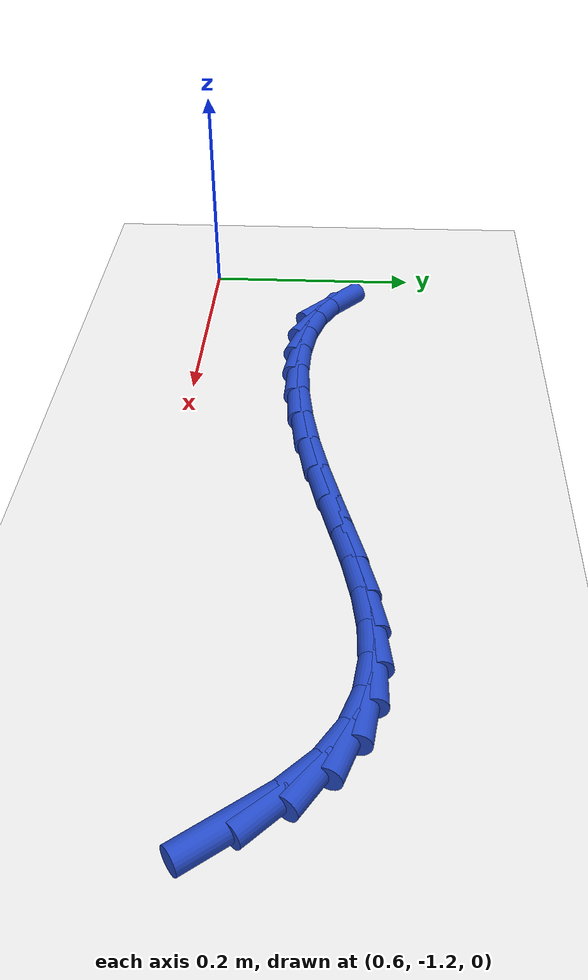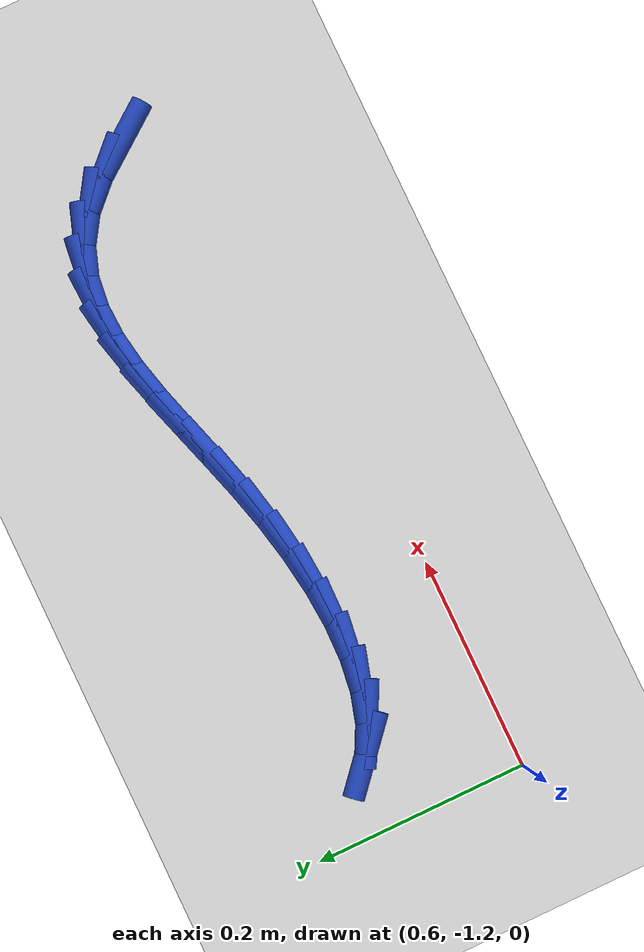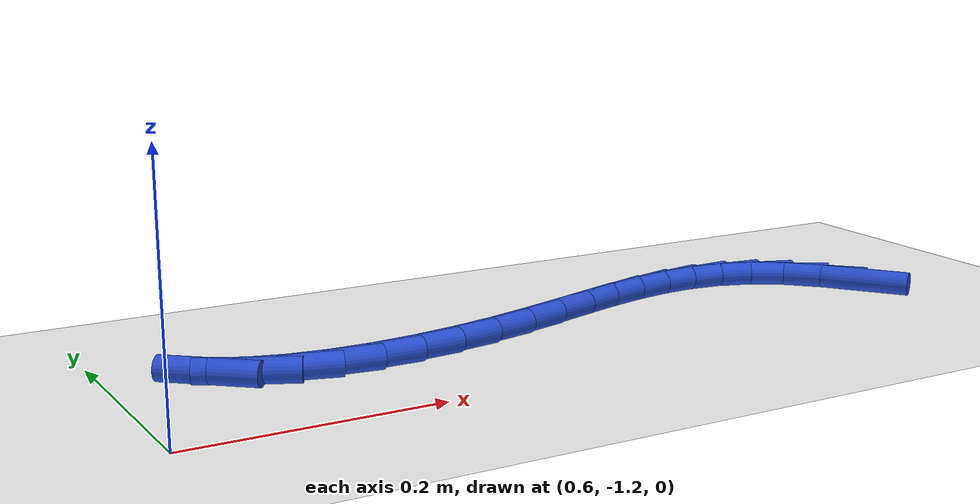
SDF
<sdf version="1.6">
 <world name="default">
  <model name="ground_plane">
   <static>1</static>
   <link name="link">
    <collision name="collision">
     <geometry><plane><normal>0 0 1</normal><size>100 100</size></plane></geometry>
     <surface><friction><ode><mu>100</mu><mu2>50</mu2></ode></friction></surface>
    </collision>
    <visual name="visual">
     <cast_shadows>0</cast_shadows>
     <geometry><plane><normal>0 0 1</normal><size>100 100</size></plane></geometry>
     <material>
      <script><uri>file://media/materials/scripts/gazebo.material</uri><name>Gazebo/WhiteGlow</name></script>
     </material>
    </visual>
   </link>
  </model>
  <model name="line">
   <link name="link_177">
    <pose>1.2574953740834272 -1.1154600243261439 0.01 0 1.57 -0.9251960070785696</pose>
    <collision name="collision">
     <geometry><cylinder><radius>0.01</radius><length>0.08</length></cylinder></geometry>
    </collision>
    <visual name="visual">
     <material>
      <script><name>Gazebo/Blue</name><uri>file://media/materials/scripts/gazebo.material</uri></script>
     </material>
     <geometry><cylinder><radius>0.01</radius><length>0.08</length></cylinder></geometry>
    </visual>
   </link>
   <link name="link_178">
    <pose>1.2353408535639914 -1.0860494893891866 0.01 0 1.57 -0.786071275579081</pose>
    <collision name="collision">
     <geometry><cylinder><radius>0.01</radius><length>0.08</length></cylinder></geometry>
    </collision>
    <visual name="visual">
     <material>
      <script><name>Gazebo/Blue</name><uri>file://media/materials/scripts/gazebo.material</uri></script>
     </material>
     <geometry><cylinder><radius>0.01</radius><length>0.08</length></cylinder></geometry>
    </visual>
   </link>
   <link name="link_179">
    <pose>1.2114227047401316 -1.0620991196775176 0.01 0 1.57 -0.5690718948985967</pose>
    <collision name="collision">
     <geometry><cylinder><radius>0.01</radius><length>0.08</length></cylinder></geometry>
    </collision>
    <visual name="visual">
     <material>
      <script><name>Gazebo/Blue</name><uri>file://media/materials/scripts/gazebo.material</uri></script>
     </material>
     <geometry><cylinder><radius>0.01</radius><length>0.08</length></cylinder></geometry>
    </visual>
   </link>
   <link name="link_180">
    <pose>1.1857620124269057 -1.0456850032497507 0.01 0 1.57 -0.3360389864501063</pose>
    <collision name="collision">
     <geometry><cylinder><radius>0.01</radius><length>0.08</length></cylinder></geometry>
    </collision>
    <visual name="visual">
     <material>
      <script><name>Gazebo/Blue</name><uri>file://media/materials/scripts/gazebo.material</uri></script>
     </material>
     <geometry><cylinder><radius>0.01</radius><length>0.08</length></cylinder></geometry>
    </visual>
   </link>
   <link name="link_181">
    <pose>1.1584656367248785 -1.036150749458793 0.01 0 1.57 -0.12601335157075816</pose>
    <collision name="collision">
     <geometry><cylinder><radius>0.01</radius><length>0.08</length></cylinder></geometry>
    </collision>
    <visual name="visual">
     <material>
      <script><name>Gazebo/Blue</name><uri>file://media/materials/scripts/gazebo.material</uri></script>
     </material>
     <geometry><cylinder><radius>0.01</radius><length>0.08</length></cylinder></geometry>
    </visual>
   </link>
   <link name="link_182">
    <pose>1.129651097406752 -1.0325003905060557 0.01 0 1.57 0.04093560277414147</pose>
    <collision name="collision">
     <geometry><cylinder><radius>0.01</radius><length>0.08</length></cylinder></geometry>
    </collision>
    <visual name="visual">
     <material>
      <script><name>Gazebo/Blue</name><uri>file://media/materials/scripts/gazebo.material</uri></script>
     </material>
     <geometry><cylinder><radius>0.01</radius><length>0.08</length></cylinder></geometry>
    </visual>
   </link>
   <link name="link_183">
    <pose>1.099435914245227 -1.0337379585929478 0.01 0 1.57 0.1614337470369636</pose>
    <collision name="collision">
     <geometry><cylinder><radius>0.01</radius><length>0.08</length></cylinder></geometry>
    </collision>
    <visual name="visual">
     <material>
      <script><name>Gazebo/Blue</name><uri>file://media/materials/scripts/gazebo.material</uri></script>
     </material>
     <geometry><cylinder><radius>0.01</radius><length>0.08</length></cylinder></geometry>
    </visual>
   </link>
   <link name="link_184">
    <pose>1.067937607013006 -1.0388674859208817 0.01 0 1.57 0.24092740371206198</pose>
    <collision name="collision">
     <geometry><cylinder><radius>0.01</radius><length>0.08</length></cylinder></geometry>
    </collision>
    <visual name="visual">
     <material>
      <script><name>Gazebo/Blue</name><uri>file://media/materials/scripts/gazebo.material</uri></script>
     </material>
     <geometry><cylinder><radius>0.01</radius><length>0.08</length></cylinder></geometry>
    </visual>
   </link>
   <link name="link_185">
    <pose>1.0352736954827886 -1.046893004691267 0.01 0 1.57 0.28633124243324376</pose>
    <collision name="collision">
     <geometry><cylinder><radius>0.01</radius><length>0.08</length></cylinder></geometry>
    </collision>
    <visual name="visual">
     <material>
      <script><name>Gazebo/Blue</name><uri>file://media/materials/scripts/gazebo.material</uri></script>
     </material>
     <geometry><cylinder><radius>0.01</radius><length>0.08</length></cylinder></geometry>
    </visual>
   </link>
   <link name="link_186">
    <pose>1.0015616994272782 -1.0568185471055143 0.01 0 1.57 0.30298474546033943</pose>
    <collision name="collision">
     <geometry><cylinder><radius>0.01</radius><length>0.08</length></cylinder></geometry>
    </collision>
    <visual name="visual">
     <material>
      <script><name>Gazebo/Blue</name><uri>file://media/materials/scripts/gazebo.material</uri></script>
     </material>
     <geometry><cylinder><radius>0.01</radius><length>0.08</length></cylinder></geometry>
    </visual>
   </link>
   <link name="link_187">
    <pose>0.9669191386191758 -1.067648145365034 0.01 0 1.57 0.29406828375674243</pose>
    <collision name="collision">
     <geometry><cylinder><radius>0.01</radius><length>0.08</length></cylinder></geometry>
    </collision>
    <visual name="visual">
     <material>
      <script><name>Gazebo/Blue</name><uri>file://media/materials/scripts/gazebo.material</uri></script>
     </material>
     <geometry><cylinder><radius>0.01</radius><length>0.08</length></cylinder></geometry>
    </visual>
   </link>
   <link name="link_188">
    <pose>0.9314635328311823 -1.078385831671237 0.01 0 1.57 0.2608591501180718</pose>
    <collision name="collision">
     <geometry><cylinder><radius>0.01</radius><length>0.08</length></cylinder></geometry>
    </collision>
    <visual name="visual">
     <material>
      <script><name>Gazebo/Blue</name><uri>file://media/materials/scripts/gazebo.material</uri></script>
     </material>
     <geometry><cylinder><radius>0.01</radius><length>0.08</length></cylinder></geometry>
    </visual>
   </link>
   <link name="link_189">
    <pose>0.8953127475574533 -1.0880359838298028 0.01 0 1.57 0.20794600894944046</pose>
    <collision name="collision">
     <geometry><cylinder><radius>0.01</radius><length>0.08</length></cylinder></geometry>
    </collision>
    <visual name="visual">
     <material>
      <script><name>Gazebo/Blue</name><uri>file://media/materials/scripts/gazebo.material</uri></script>
     </material>
     <geometry><cylinder><radius>0.01</radius><length>0.08</length></cylinder></geometry>
    </visual>
   </link>
   <link name="link_190">
    <pose>0.8587353838467029 -1.095753664108184 0.01 0 1.57 0.1454904799351703</pose>
    <collision name="collision">
     <geometry><cylinder><radius>0.01</radius><length>0.08</length></cylinder></geometry>
    </collision>
    <visual name="visual">
     <material>
      <script><name>Gazebo/Blue</name><uri>file://media/materials/scripts/gazebo.material</uri></script>
     </material>
     <geometry><cylinder><radius>0.01</radius><length>0.08</length></cylinder></geometry>
    </visual>
   </link>
   <link name="link_191">
    <pose>0.8223860222848511 -1.1010797834807886 0.01 0 1.57 0.07151442155192943</pose>
    <collision name="collision">
     <geometry><cylinder><radius>0.01</radius><length>0.08</length></cylinder></geometry>
    </collision>
    <visual name="visual">
     <material>
      <script><name>Gazebo/Blue</name><uri>file://media/materials/scripts/gazebo.material</uri></script>
     </material>
     <geometry><cylinder><radius>0.01</radius><length>0.08</length></cylinder></geometry>
    </visual>
   </link>
   <link name="link_192">
    <pose>0.7869801504832343 -1.1036161393026145 0.01 0 1.57 -0.01930635169752678</pose>
    <collision name="collision">
     <geometry><cylinder><radius>0.01</radius><length>0.08</length></cylinder></geometry>
    </collision>
    <visual name="visual">
     <material>
      <script><name>Gazebo/Blue</name><uri>file://media/materials/scripts/gazebo.material</uri></script>
     </material>
     <geometry><cylinder><radius>0.01</radius><length>0.08</length></cylinder></geometry>
    </visual>
   </link>
   <link name="link_193">
    <pose>0.753233256053192 -1.1029645289286591 0.01 0 1.57 -0.13426702741084673</pose>
    <collision name="collision">
     <geometry><cylinder><radius>0.01</radius><length>0.08</length></cylinder></geometry>
    </collision>
    <visual name="visual">
     <material>
      <script><name>Gazebo/Blue</name><uri>file://media/materials/scripts/gazebo.material</uri></script>
     </material>
     <geometry><cylinder><radius>0.01</radius><length>0.08</length></cylinder></geometry>
    </visual>
   </link>
   <link name="link_194">
    <pose>0.7218608266060613 -1.0987267497139208 0.01 0 1.57 -0.2829171694579515</pose>
    <collision name="collision">
     <geometry><cylinder><radius>0.01</radius><length>0.08</length></cylinder></geometry>
    </collision>
    <visual name="visual">
     <material>
      <script><name>Gazebo/Blue</name><uri>file://media/materials/scripts/gazebo.material</uri></script>
     </material>
     <geometry><cylinder><radius>0.01</radius><length>0.08</length></cylinder></geometry>
    </visual>
   </link>
   <link name="link_195">
    <pose>0.6935783497531792 -1.0905045990133968 0.01 0 1.57 -0.47554482728842257</pose>
    <collision name="collision">
     <geometry><cylinder><radius>0.01</radius><length>0.08</length></cylinder></geometry>
    </collision>
    <visual name="visual">
     <material>
      <script><name>Gazebo/Blue</name><uri>file://media/materials/scripts/gazebo.material</uri></script>
     </material>
     <geometry><cylinder><radius>0.01</radius><length>0.08</length></cylinder></geometry>
    </visual>
   </link>
   <link name="link_196">
    <pose>0.6691013131058836 -1.077899874182085 0.01 0 1.57 -0.7163939526340452</pose>
    <collision name="collision">
     <geometry><cylinder><radius>0.01</radius><length>0.08</length></cylinder></geometry>
    </collision>
    <visual name="visual">
     <material>
      <script><name>Gazebo/Blue</name><uri>file://media/materials/scripts/gazebo.material</uri></script>
     </material>
     <geometry><cylinder><radius>0.01</radius><length>0.08</length></cylinder></geometry>
    </visual>
   </link>
  </model>
 </world>
</sdf>
